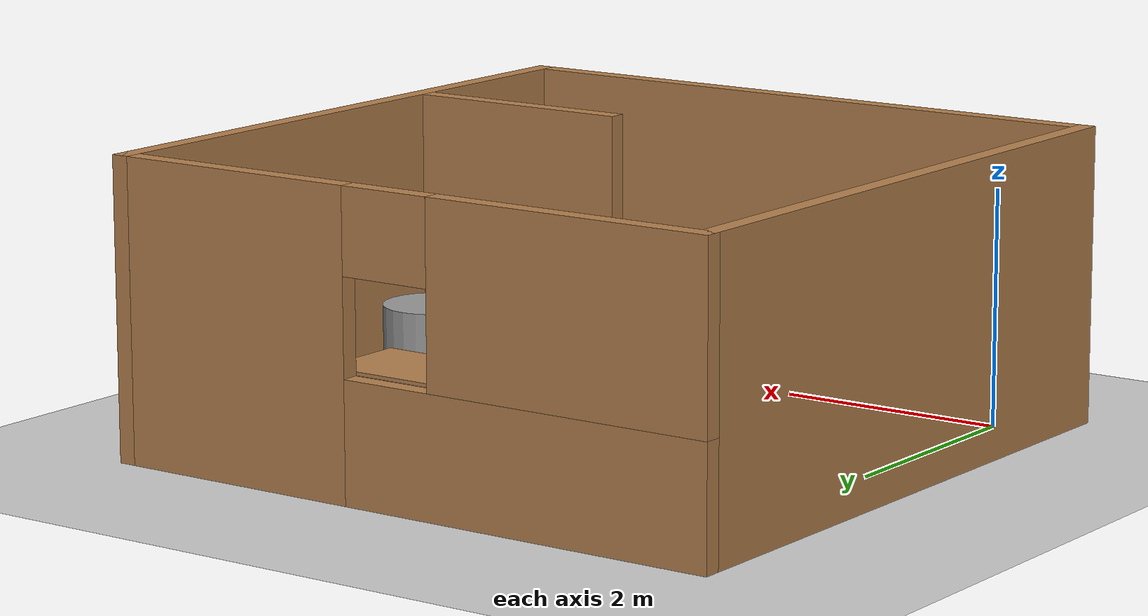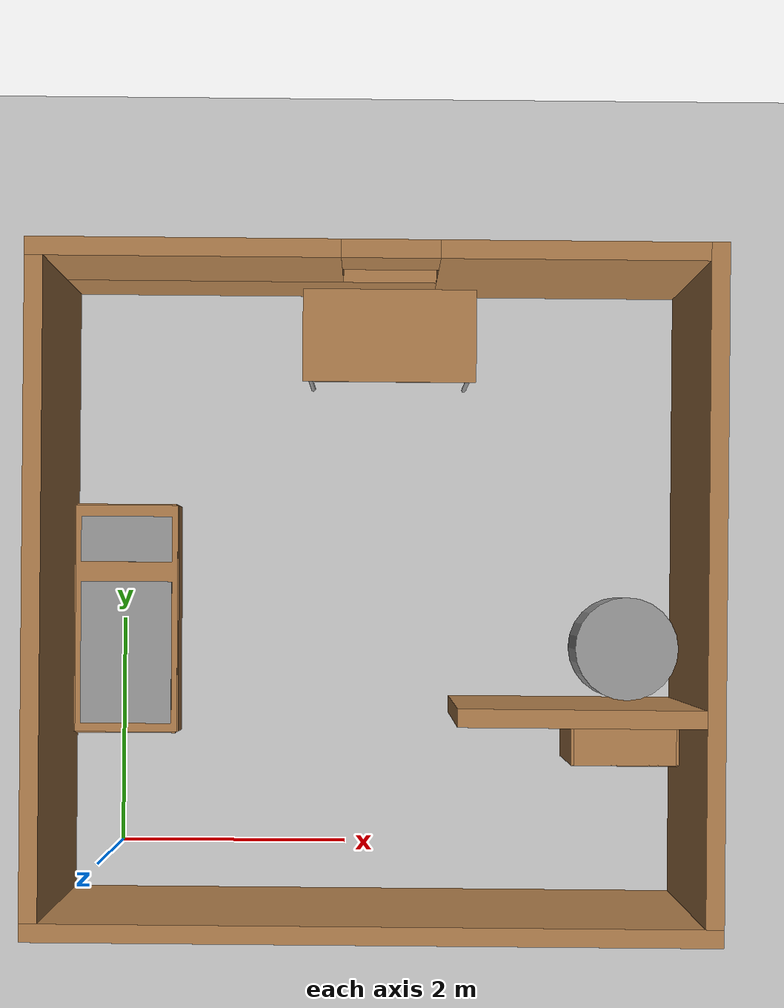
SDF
<sdf version="1.6">
 <world name="default">
  <light name="sun" type="directional">
   <pose>0 0 10 0 -0 0</pose>
   <diffuse>0.8 0.8 0.8 1</diffuse>
   <specular>0.2 0.2 0.2 1</specular>
   <attenuation>
    <range>1000</range>
    <constant>0.9</constant>
    <linear>0.01</linear>
    <quadratic>0.001</quadratic>
   </attenuation>
   <direction>-0.5 0.1 -0.9</direction>
  </light>
  <model name="ground_plane">
   <static>1</static>
   <link name="link">
    <collision name="collision">
     <geometry><plane><normal>0 0 1</normal><size>100 100</size></plane></geometry>
     <surface><friction><ode><mu>100</mu><mu2>50</mu2></ode></friction></surface>
    </collision>
    <visual name="visual">
     <cast_shadows>0</cast_shadows>
     <geometry><plane><normal>0 0 1</normal><size>100 100</size></plane></geometry>
     <material>
      <script><uri>file://media/materials/scripts/gazebo.material</uri><name>Gazebo/Grey</name></script>
     </material>
    </visual>
   </link>
  </model>
  <physics name="default_physics" default="0" type="ode">
   <max_step_size>0.01</max_step_size>
   <real_time_factor>1</real_time_factor>
   <real_time_update_rate>100</real_time_update_rate>
  </physics>
  <gravity>0 0 -9.8</gravity>
  <magnetic_field>6e-06 2.3e-05 -4.2e-05</magnetic_field>
  <atmosphere type="adiabatic"/>
  <scene><ambient>0.4 0.4 0.4 1</ambient><background>0.7 0.7 0.7 1</background><shadows>1</shadows></scene>
  <spherical_coordinates>
   <surface_model>EARTH_WGS84</surface_model>
   <latitude_deg>0</latitude_deg>
   <longitude_deg>0</longitude_deg>
   <elevation>0</elevation>
   <heading_deg>0</heading_deg>
  </spherical_coordinates>
  <model name="Hotel_Room_0">
   <pose>2.25 2.25 0 0 -0 0</pose>
   <link name="Wall_20">
    <collision name="Wall_20_Collision">
     <geometry><box><size>5.65 0.15 2.5</size></box></geometry>
     <pose>0 0 1.25 0 -0 0</pose>
    </collision>
    <visual name="Wall_20_Visual">
     <pose>0 0 1.25 0 -0 0</pose>
     <geometry><box><size>5.65 0.15 2.5</size></box></geometry>
     <material>
      <script><uri>file://media/materials/scripts/gazebo.material</uri><name>Gazebo/Wood</name></script>
      <ambient>1 1 1 1</ambient>
     </material>
    </visual>
    <pose>0 -2.75 0 0 -0 0</pose>
   </link>
   <link name="Wall_22">
    <collision name="Wall_22_Collision">
     <geometry><box><size>5.65 0.15 2.5</size></box></geometry>
     <pose>0 0 1.25 0 -0 0</pose>
    </collision>
    <visual name="Wall_22_Visual">
     <pose>0 0 1.25 0 -0 0</pose>
     <geometry><box><size>5.65 0.15 2.5</size></box></geometry>
     <material>
      <script><uri>file://media/materials/scripts/gazebo.material</uri><name>Gazebo/Wood</name></script>
      <ambient>1 1 1 1</ambient>
     </material>
    </visual>
    <pose>2.75 0 0 0 -0 1.5708</pose>
   </link>
   <link name="Wall_24">
    <pose>0 2.75 0 0 -0 3.14159</pose>
    <visual name="Wall_24_Visual_0">
     <pose>-1.66806 0 1.25 0 -0 0</pose>
     <geometry><box><size>2.31387 0.15 2.5</size></box></geometry>
     <material>
      <script><uri>file://media/materials/scripts/gazebo.material</uri><name>Gazebo/Wood</name></script>
      <ambient>1 1 1 1</ambient>
     </material>
    </visual>
    <collision name="Wall_24_Collision_0">
     <geometry><box><size>2.31387 0.15 2.5</size></box></geometry>
     <pose>-1.66806 0 1.25 0 -0 0</pose>
    </collision>
    <visual name="Wall_24_Visual_1">
     <pose>1.15694 0 0.5 0 -0 0</pose>
     <geometry><box><size>3.33613 0.15 1</size></box></geometry>
     <material>
      <script><uri>file://media/materials/scripts/gazebo.material</uri><name>Gazebo/Wood</name></script>
      <ambient>1 1 1 1</ambient>
     </material>
    </visual>
    <collision name="Wall_24_Collision_1">
     <geometry><box><size>3.33613 0.15 1</size></box></geometry>
     <pose>1.15694 0 0.5 0 -0 0</pose>
    </collision>
    <visual name="Wall_24_Visual_2">
     <pose>1.55694 0 1.75 0 -0 0</pose>
     <geometry><box><size>2.53613 0.15 1.5</size></box></geometry>
     <material>
      <script><uri>file://media/materials/scripts/gazebo.material</uri><name>Gazebo/Wood</name></script>
      <ambient>1 1 1 1</ambient>
     </material>
    </visual>
    <collision name="Wall_24_Collision_2">
     <geometry><box><size>2.53613 0.15 1.5</size></box></geometry>
     <pose>1.55694 0 1.75 0 -0 0</pose>
    </collision>
    <visual name="Wall_24_Visual_3">
     <pose>-0.111126 0 2.15 0 -0 0</pose>
     <geometry><box><size>0.8 0.15 0.7</size></box></geometry>
     <material>
      <script><uri>file://media/materials/scripts/gazebo.material</uri><name>Gazebo/Wood</name></script>
      <ambient>1 1 1 1</ambient>
     </material>
    </visual>
    <collision name="Wall_24_Collision_3">
     <geometry><box><size>0.8 0.15 0.7</size></box></geometry>
     <pose>-0.111126 0 2.15 0 -0 0</pose>
    </collision>
   </link>
   <link name="Wall_26">
    <collision name="Wall_26_Collision">
     <geometry><box><size>5.65 0.15 2.5</size></box></geometry>
     <pose>0 0 1.25 0 -0 0</pose>
    </collision>
    <visual name="Wall_26_Visual">
     <pose>0 0 1.25 0 -0 0</pose>
     <geometry><box><size>5.65 0.15 2.5</size></box></geometry>
     <material>
      <script><uri>file://media/materials/scripts/gazebo.material</uri><name>Gazebo/Wood</name></script>
      <ambient>1 1 1 1</ambient>
     </material>
    </visual>
    <pose>-2.75 0 0 0 0 -1.5708</pose>
   </link>
   <link name="Wall_28">
    <collision name="Wall_28_Collision">
     <geometry><box><size>2.15 0.15 2.5</size></box></geometry>
     <pose>0 0 1.25 0 -0 0</pose>
    </collision>
    <visual name="Wall_28_Visual">
     <pose>0 0 1.25 0 -0 0</pose>
     <geometry><box><size>2.15 0.15 2.5</size></box></geometry>
     <material>
      <script><uri>file://media/materials/scripts/gazebo.material</uri><name>Gazebo/Wood</name></script>
      <ambient>1 1 1 1</ambient>
     </material>
    </visual>
    <pose>1.75 -1 0 0 -0 3.14159</pose>
   </link>
   <static>1</static>
  </model>
  <model name="bookshelf">
   <static>1</static>
   <link name="link">
    <inertial><mass>1</mass></inertial>
    <collision name="back">
     <pose>0 0.005 0.6 0 -0 0</pose>
     <geometry><box><size>0.9 0.01 1.2</size></box></geometry>
    </collision>
    <visual name="visual1">
     <pose>0 0.005 0.6 0 -0 0</pose>
     <geometry><box><size>0.9 0.01 1.2</size></box></geometry>
     <material>
      <script><uri>file://media/materials/scripts/gazebo.material</uri><name>Gazebo/Wood</name></script>
     </material>
    </visual>
    <collision name="left_side">
     <pose>0.45 -0.195 0.6 0 -0 0</pose>
     <geometry><box><size>0.02 0.4 1.2</size></box></geometry>
    </collision>
    <visual name="visual2">
     <pose>0.45 -0.195 0.6 0 -0 0</pose>
     <geometry><box><size>0.02 0.4 1.2</size></box></geometry>
     <material>
      <script><uri>file://media/materials/scripts/gazebo.material</uri><name>Gazebo/Wood</name></script>
     </material>
    </visual>
    <collision name="right_side">
     <pose>-0.45 -0.195 0.6 0 -0 0</pose>
     <geometry><box><size>0.02 0.4 1.2</size></box></geometry>
    </collision>
    <visual name="visual3">
     <pose>-0.45 -0.195 0.6 0 -0 0</pose>
     <geometry><box><size>0.02 0.4 1.2</size></box></geometry>
     <material>
      <script><uri>file://media/materials/scripts/gazebo.material</uri><name>Gazebo/Wood</name></script>
     </material>
    </visual>
    <collision name="bottom">
     <pose>0 -0.195 0.03 0 -0 0</pose>
     <geometry><box><size>0.88 0.4 0.06</size></box></geometry>
    </collision>
    <visual name="visual4">
     <pose>0 -0.195 0.03 0 -0 0</pose>
     <geometry><box><size>0.88 0.4 0.06</size></box></geometry>
     <material>
      <script><uri>file://media/materials/scripts/gazebo.material</uri><name>Gazebo/Wood</name></script>
     </material>
    </visual>
    <collision name="top">
     <pose>0 -0.195 1.19 0 -0 0</pose>
     <geometry><box><size>0.88 0.4 0.02</size></box></geometry>
    </collision>
    <visual name="visual5">
     <pose>0 -0.195 1.19 0 -0 0</pose>
     <geometry><box><size>0.88 0.4 0.02</size></box></geometry>
     <material>
      <script><uri>file://media/materials/scripts/gazebo.material</uri><name>Gazebo/Wood</name></script>
     </material>
    </visual>
    <collision name="low_shelf">
     <pose>0 -0.195 0.43 0 -0 0</pose>
     <geometry><box><size>0.88 0.4 0.02</size></box></geometry>
    </collision>
    <visual name="visual6">
     <pose>0 -0.195 0.43 0 -0 0</pose>
     <geometry><box><size>0.88 0.4 0.02</size></box></geometry>
     <material>
      <script><uri>file://media/materials/scripts/gazebo.material</uri><name>Gazebo/Wood</name></script>
     </material>
    </visual>
    <collision name="high_shelf">
     <pose>0 -0.195 0.8 0 -0 0</pose>
     <geometry><box><size>0.88 0.4 0.02</size></box></geometry>
    </collision>
    <visual name="visual7">
     <pose>0 -0.195 0.8 0 -0 0</pose>
     <geometry><box><size>0.88 0.4 0.02</size></box></geometry>
     <material>
      <script><uri>file://media/materials/scripts/gazebo.material</uri><name>Gazebo/Wood</name></script>
     </material>
    </visual>
   </link>
   <pose>4.40588 0.793435 0 0 0 -3.13392</pose>
  </model>
  <model name="unit_cylinder_0">
   <pose>4.45661 1.77522 0.399646 -0.000223 -0.000754 0.020316</pose>
   <link name="link">
    <inertial>
     <mass>2</mass>
     <inertia><ixx>0.145833</ixx><ixy>0</ixy><ixz>0</ixz><iyy>0.145833</iyy><iyz>0</iyz><izz>0.125</izz></inertia>
    </inertial>
    <collision name="collision">
     <geometry><cylinder><radius>0.45</radius><length>0.8</length></cylinder></geometry>
    </collision>
    <visual name="visual">
     <geometry><cylinder><radius>0.45</radius><length>0.8</length></cylinder></geometry>
     <material>
      <script><name>Gazebo/Grey</name><uri>file://media/materials/scripts/gazebo.material</uri></script>
     </material>
    </visual>
   </link>
  </model>
  <model name="bookshelf_0">
   <static>1</static>
   <link name="link">
    <inertial><mass>1</mass></inertial>
    <collision name="back">
     <pose>0 0.005 0.6 0 -0 0</pose>
     <geometry><box><size>0.9 0.01 2</size></box></geometry>
    </collision>
    <visual name="visual1">
     <pose>0 0.005 0.6 0 -0 0</pose>
     <geometry><box><size>0.9 0.01 2</size></box></geometry>
     <material>
      <script><uri>file://media/materials/scripts/gazebo.material</uri><name>Gazebo/Wood</name></script>
     </material>
    </visual>
    <collision name="bookshelf_0_back_plate_geom_part_plate">
     <pose>0 0.01 0.9 0 -0 0</pose>
     <geometry><box><size>0.8 0.04 1.25</size></box></geometry>
    </collision>
    <visual name="bookshelf_0_back_plate_geom_part_plate_visual">
     <pose>0 0.01 0.9 0 -0 0</pose>
     <geometry><box><size>0.8 0.04 1.25</size></box></geometry>
     <material>
      <script><uri>file://media/materials/scripts/gazebo.material</uri><name>Gazebo/grey</name></script>
     </material>
    </visual>
    <collision name="bookshelf_0_back_plate_geom_part2_plate">
     <pose>0 0.01 -0.1 0 -0 0</pose>
     <geometry><box><size>0.8 0.04 0.4</size></box></geometry>
    </collision>
    <visual name="bookshelf_0_back_plate_geom_part2_plate_visual">
     <pose>0 0.01 -0.1 0 -0 0</pose>
     <geometry><box><size>0.8 0.04 0.4</size></box></geometry>
     <material>
      <script><uri>file://media/materials/scripts/gazebo.material</uri><name>Gazebo/grey</name></script>
     </material>
    </visual>
    <collision name="left_side">
     <pose>0.45 -0.195 0.6 0 -0 0</pose>
     <geometry><box><size>0.02 0.4 2</size></box></geometry>
    </collision>
    <visual name="visual2">
     <pose>0.45 -0.195 0.6 0 -0 0</pose>
     <geometry><box><size>0.02 0.4 2</size></box></geometry>
     <material>
      <script><uri>file://media/materials/scripts/gazebo.material</uri><name>Gazebo/Wood</name></script>
     </material>
    </visual>
    <collision name="right_side">
     <pose>-0.45 -0.195 0.6 0 -0 0</pose>
     <geometry><box><size>0.02 0.4 2</size></box></geometry>
    </collision>
    <visual name="visual3">
     <pose>-0.45 -0.195 0.6 0 -0 0</pose>
     <geometry><box><size>0.02 0.4 2</size></box></geometry>
     <material>
      <script><uri>file://media/materials/scripts/gazebo.material</uri><name>Gazebo/Wood</name></script>
     </material>
    </visual>
    <collision name="bottom">
     <pose>0 -0.195 -0.39 0 -0 0</pose>
     <geometry><box><size>0.88 0.4 0.04</size></box></geometry>
    </collision>
    <visual name="visual4">
     <pose>0 -0.195 -0.39 0 -0 0</pose>
     <geometry><box><size>0.88 0.4 0.04</size></box></geometry>
     <material>
      <script><uri>file://media/materials/scripts/gazebo.material</uri><name>Gazebo/Wood</name></script>
     </material>
    </visual>
    <collision name="top">
     <pose>0 -0.195 1.59 0 -0 0</pose>
     <geometry><box><size>0.88 0.4 0.04</size></box></geometry>
    </collision>
    <visual name="visual5">
     <pose>0 -0.195 1.59 0 -0 0</pose>
     <geometry><box><size>0.88 0.4 0.04</size></box></geometry>
     <material>
      <script><uri>file://media/materials/scripts/gazebo.material</uri><name>Gazebo/Wood</name></script>
     </material>
    </visual>
    <collision name="low_shelf">
     <pose>0 -0.195 0.43 0 -0 0</pose>
     <geometry><box><size>0.88 0.4 0.02</size></box></geometry>
    </collision>
    <visual name="visual6">
     <pose>0 -0.195 0.43 0 -0 0</pose>
     <geometry><box><size>0.88 0.4 0.02</size></box></geometry>
     <material>
      <script><uri>file://media/materials/scripts/gazebo.material</uri><name>Gazebo/Wood</name></script>
     </material>
    </visual>
    <collision name="high_shelf">
     <pose>0 -0.195 0.8 0 -0 0</pose>
     <geometry><box><size>0.88 0.4 0.02</size></box></geometry>
    </collision>
    <visual name="visual7">
     <pose>0 -0.195 0.8 0 -0 0</pose>
     <geometry><box><size>0.88 0.4 0.02</size></box></geometry>
     <material>
      <script><uri>file://media/materials/scripts/gazebo.material</uri><name>Gazebo/Wood</name></script>
     </material>
    </visual>
   </link>
   <pose>0.059807 2.60119 0.512949 1.56386 0.000115 0.003318</pose>
  </model>
  <model name="table">
   <static>1</static>
   <link name="link">
    <collision name="surface">
     <pose>0 0 1 0 -0 0</pose>
     <geometry><box><size>1.5 0.8 0.03</size></box></geometry>
     <surface><friction><ode><mu>0.6</mu><mu2>0.6</mu2></ode></friction></surface>
    </collision>
    <visual name="visual1">
     <pose>0 0 1 0 -0 0</pose>
     <geometry><box><size>1.5 0.8 0.03</size></box></geometry>
     <material>
      <script><uri>file://media/materials/scripts/gazebo.material</uri><name>Gazebo/Wood</name></script>
     </material>
    </visual>
    <collision name="front_left_leg">
     <pose>0.68 0.38 0.5 0 -0 0</pose>
     <geometry><cylinder><radius>0.02</radius><length>1</length></cylinder></geometry>
    </collision>
    <visual name="front_left_leg">
     <pose>0.68 0.38 0.5 0 -0 0</pose>
     <geometry><cylinder><radius>0.02</radius><length>1</length></cylinder></geometry>
     <material>
      <script><uri>file://media/materials/scripts/gazebo.material</uri><name>Gazebo/Grey</name></script>
     </material>
    </visual>
    <collision name="front_right_leg">
     <pose>0.68 -0.38 0.5 0 -0 0</pose>
     <geometry><cylinder><radius>0.02</radius><length>1</length></cylinder></geometry>
    </collision>
    <visual name="front_right_leg">
     <pose>0.68 -0.38 0.5 0 -0 0</pose>
     <geometry><cylinder><radius>0.02</radius><length>1</length></cylinder></geometry>
     <material>
      <script><uri>file://media/materials/scripts/gazebo.material</uri><name>Gazebo/Grey</name></script>
     </material>
    </visual>
    <collision name="back_right_leg">
     <pose>-0.68 -0.38 0.5 0 -0 0</pose>
     <geometry><cylinder><radius>0.02</radius><length>1</length></cylinder></geometry>
    </collision>
    <visual name="back_right_leg">
     <pose>-0.68 -0.38 0.5 0 -0 0</pose>
     <geometry><cylinder><radius>0.02</radius><length>1</length></cylinder></geometry>
     <material>
      <script><uri>file://media/materials/scripts/gazebo.material</uri><name>Gazebo/Grey</name></script>
     </material>
    </visual>
    <collision name="back_left_leg">
     <pose>-0.68 0.38 0.5 0 -0 0</pose>
     <geometry><cylinder><radius>0.02</radius><length>1</length></cylinder></geometry>
    </collision>
    <visual name="back_left_leg">
     <pose>-0.68 0.38 0.5 0 -0 0</pose>
     <geometry><cylinder><radius>0.02</radius><length>1</length></cylinder></geometry>
     <material>
      <script><uri>file://media/materials/scripts/gazebo.material</uri><name>Gazebo/Grey</name></script>
     </material>
    </visual>
   </link>
   <pose>2.36253 4.46609 0 0 -0 0</pose>
  </model>
 </world>
</sdf>
